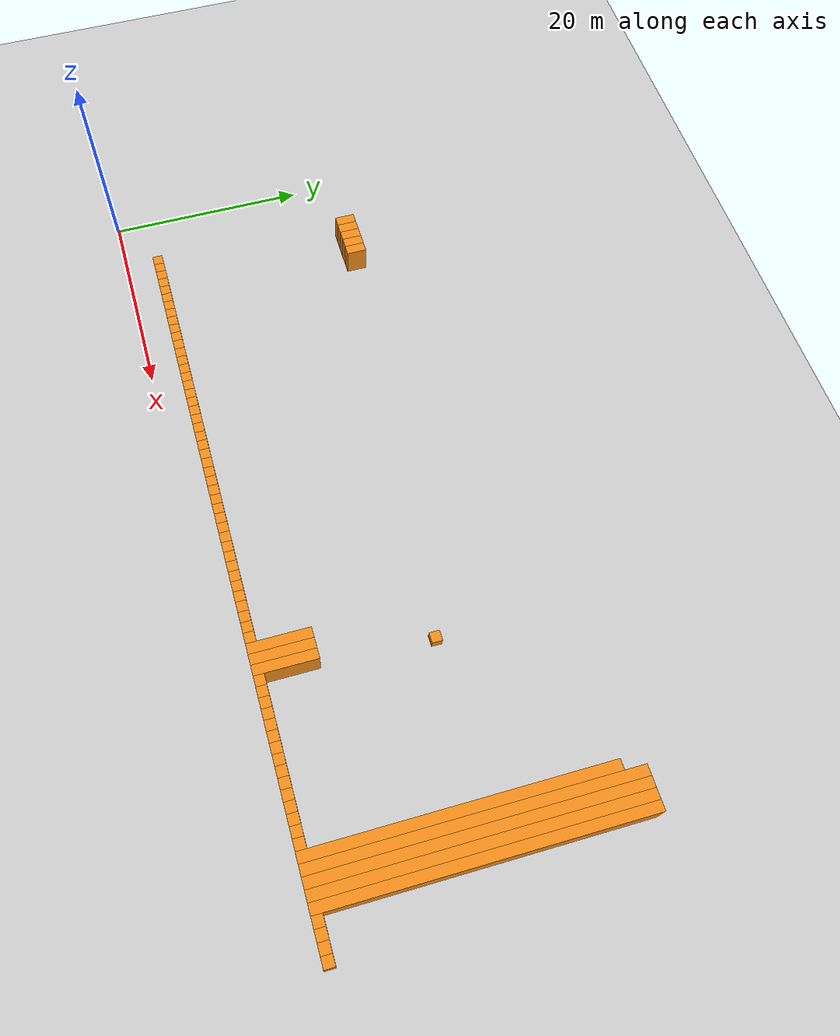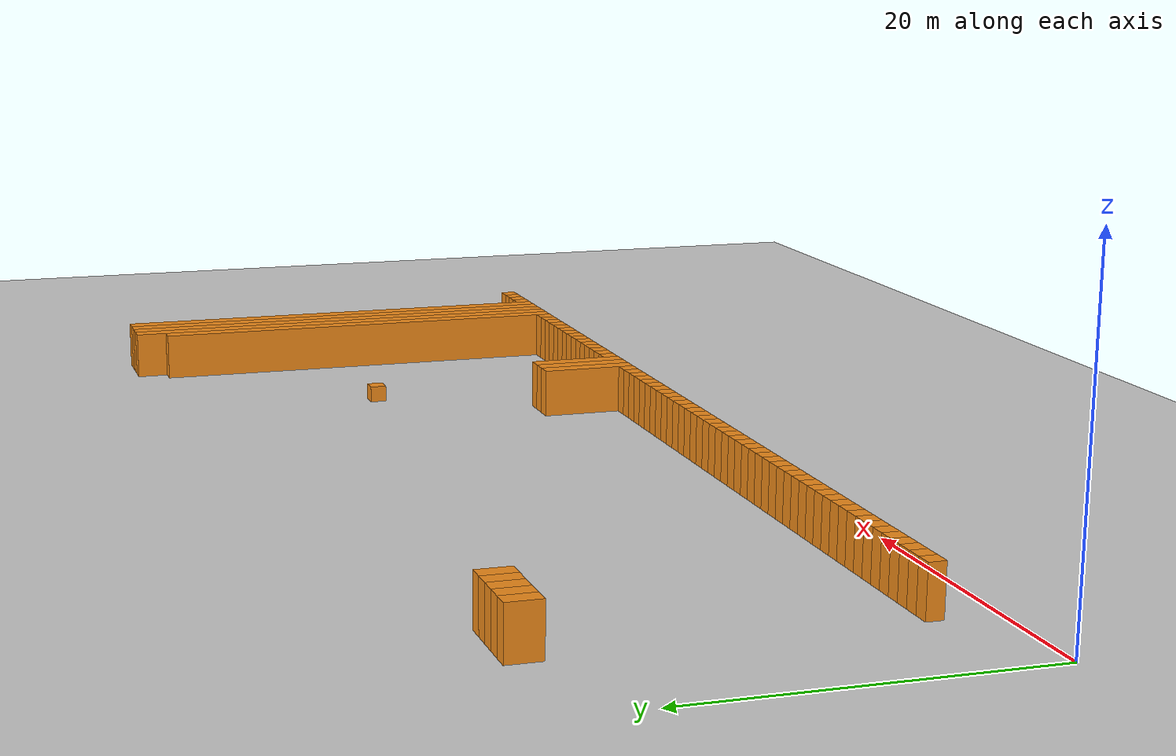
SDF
<sdf version="1.6">
 <world name="default">
  <include><uri>model://ground_plane</uri></include>
  <model name="unit_box_004">
   <pose>7.50     3.50     1.50 0 0 0</pose>
   <static>1</static>
   <link name="link">
    <inertial>
     <mass>5000</mass>
     <inertia><ixx>200</ixx><ixy>0</ixy><ixz>0</ixz><iyy>200</iyy><iyz>0</iyz><izz>200</izz></inertia>
    </inertial>
    <collision name="collision"><geometry><box><size>1 1 3</size></box></geometry></collision>
    <visual name="visual">
     <geometry><box><size>1 1 3</size></box></geometry>
     <material>
      <script><name>Gazebo/Orange</name><uri>file://media/materials/scripts/gazebo.material</uri></script>
     </material>
    </visual>
   </link>
  </model>
  <model name="unit_box_005">
   <pose>7.50    24.00     1.50 0 0 0</pose>
   <static>1</static>
   <link name="link">
    <inertial>
     <mass>5000</mass>
     <inertia><ixx>200</ixx><ixy>0</ixy><ixz>0</ixz><iyy>200</iyy><iyz>0</iyz><izz>200</izz></inertia>
    </inertial>
    <collision name="collision"><geometry><box><size>1 2 3</size></box></geometry></collision>
    <visual name="visual">
     <geometry><box><size>1 2 3</size></box></geometry>
     <material>
      <script><name>Gazebo/Orange</name><uri>file://media/materials/scripts/gazebo.material</uri></script>
     </material>
    </visual>
   </link>
  </model>
  <model name="unit_box_017">
   <pose>8.50     3.50     1.50 0 0 0</pose>
   <static>1</static>
   <link name="link">
    <inertial>
     <mass>5000</mass>
     <inertia><ixx>200</ixx><ixy>0</ixy><ixz>0</ixz><iyy>200</iyy><iyz>0</iyz><izz>200</izz></inertia>
    </inertial>
    <collision name="collision"><geometry><box><size>1 1 3</size></box></geometry></collision>
    <visual name="visual">
     <geometry><box><size>1 1 3</size></box></geometry>
     <material>
      <script><name>Gazebo/Orange</name><uri>file://media/materials/scripts/gazebo.material</uri></script>
     </material>
    </visual>
   </link>
  </model>
  <model name="unit_box_018">
   <pose>8.50    24.00     1.50 0 0 0</pose>
   <static>1</static>
   <link name="link">
    <inertial>
     <mass>5000</mass>
     <inertia><ixx>200</ixx><ixy>0</ixy><ixz>0</ixz><iyy>200</iyy><iyz>0</iyz><izz>200</izz></inertia>
    </inertial>
    <collision name="collision"><geometry><box><size>1 2 3</size></box></geometry></collision>
    <visual name="visual">
     <geometry><box><size>1 2 3</size></box></geometry>
     <material>
      <script><name>Gazebo/Orange</name><uri>file://media/materials/scripts/gazebo.material</uri></script>
     </material>
    </visual>
   </link>
  </model>
  <model name="unit_box_030">
   <pose>9.50     3.50     1.50 0 0 0</pose>
   <static>1</static>
   <link name="link">
    <inertial>
     <mass>5000</mass>
     <inertia><ixx>200</ixx><ixy>0</ixy><ixz>0</ixz><iyy>200</iyy><iyz>0</iyz><izz>200</izz></inertia>
    </inertial>
    <collision name="collision"><geometry><box><size>1 1 3</size></box></geometry></collision>
    <visual name="visual">
     <geometry><box><size>1 1 3</size></box></geometry>
     <material>
      <script><name>Gazebo/Orange</name><uri>file://media/materials/scripts/gazebo.material</uri></script>
     </material>
    </visual>
   </link>
  </model>
  <model name="unit_box_031">
   <pose>9.50    24.00     1.50 0 0 0</pose>
   <static>1</static>
   <link name="link">
    <inertial>
     <mass>5000</mass>
     <inertia><ixx>200</ixx><ixy>0</ixy><ixz>0</ixz><iyy>200</iyy><iyz>0</iyz><izz>200</izz></inertia>
    </inertial>
    <collision name="collision"><geometry><box><size>1 2 3</size></box></geometry></collision>
    <visual name="visual">
     <geometry><box><size>1 2 3</size></box></geometry>
     <material>
      <script><name>Gazebo/Orange</name><uri>file://media/materials/scripts/gazebo.material</uri></script>
     </material>
    </visual>
   </link>
  </model>
  <model name="unit_box_043">
   <pose>10.50     3.50     1.50 0 0 0</pose>
   <static>1</static>
   <link name="link">
    <inertial>
     <mass>5000</mass>
     <inertia><ixx>200</ixx><ixy>0</ixy><ixz>0</ixz><iyy>200</iyy><iyz>0</iyz><izz>200</izz></inertia>
    </inertial>
    <collision name="collision"><geometry><box><size>1 1 3</size></box></geometry></collision>
    <visual name="visual">
     <geometry><box><size>1 1 3</size></box></geometry>
     <material>
      <script><name>Gazebo/Orange</name><uri>file://media/materials/scripts/gazebo.material</uri></script>
     </material>
    </visual>
   </link>
  </model>
  <model name="unit_box_044">
   <pose>10.50    24.00     1.50 0 0 0</pose>
   <static>1</static>
   <link name="link">
    <inertial>
     <mass>5000</mass>
     <inertia><ixx>200</ixx><ixy>0</ixy><ixz>0</ixz><iyy>200</iyy><iyz>0</iyz><izz>200</izz></inertia>
    </inertial>
    <collision name="collision"><geometry><box><size>1 2 3</size></box></geometry></collision>
    <visual name="visual">
     <geometry><box><size>1 2 3</size></box></geometry>
     <material>
      <script><name>Gazebo/Orange</name><uri>file://media/materials/scripts/gazebo.material</uri></script>
     </material>
    </visual>
   </link>
  </model>
  <model name="unit_box_056">
   <pose>11.50     3.50     1.50 0 0 0</pose>
   <static>1</static>
   <link name="link">
    <inertial>
     <mass>5000</mass>
     <inertia><ixx>200</ixx><ixy>0</ixy><ixz>0</ixz><iyy>200</iyy><iyz>0</iyz><izz>200</izz></inertia>
    </inertial>
    <collision name="collision"><geometry><box><size>1 1 3</size></box></geometry></collision>
    <visual name="visual">
     <geometry><box><size>1 1 3</size></box></geometry>
     <material>
      <script><name>Gazebo/Orange</name><uri>file://media/materials/scripts/gazebo.material</uri></script>
     </material>
    </visual>
   </link>
  </model>
  <model name="unit_box_057">
   <pose>11.50    24.00     1.50 0 0 0</pose>
   <static>1</static>
   <link name="link">
    <inertial>
     <mass>5000</mass>
     <inertia><ixx>200</ixx><ixy>0</ixy><ixz>0</ixz><iyy>200</iyy><iyz>0</iyz><izz>200</izz></inertia>
    </inertial>
    <collision name="collision"><geometry><box><size>1 2 3</size></box></geometry></collision>
    <visual name="visual">
     <geometry><box><size>1 2 3</size></box></geometry>
     <material>
      <script><name>Gazebo/Orange</name><uri>file://media/materials/scripts/gazebo.material</uri></script>
     </material>
    </visual>
   </link>
  </model>
  <model name="unit_box_069">
   <pose>12.50     3.50     1.50 0 0 0</pose>
   <static>1</static>
   <link name="link">
    <inertial>
     <mass>5000</mass>
     <inertia><ixx>200</ixx><ixy>0</ixy><ixz>0</ixz><iyy>200</iyy><iyz>0</iyz><izz>200</izz></inertia>
    </inertial>
    <collision name="collision"><geometry><box><size>1 1 3</size></box></geometry></collision>
    <visual name="visual">
     <geometry><box><size>1 1 3</size></box></geometry>
     <material>
      <script><name>Gazebo/Orange</name><uri>file://media/materials/scripts/gazebo.material</uri></script>
     </material>
    </visual>
   </link>
  </model>
  <model name="unit_box_082">
   <pose>13.50     3.50     1.50 0 0 0</pose>
   <static>1</static>
   <link name="link">
    <inertial>
     <mass>5000</mass>
     <inertia><ixx>200</ixx><ixy>0</ixy><ixz>0</ixz><iyy>200</iyy><iyz>0</iyz><izz>200</izz></inertia>
    </inertial>
    <collision name="collision"><geometry><box><size>1 1 3</size></box></geometry></collision>
    <visual name="visual">
     <geometry><box><size>1 1 3</size></box></geometry>
     <material>
      <script><name>Gazebo/Orange</name><uri>file://media/materials/scripts/gazebo.material</uri></script>
     </material>
    </visual>
   </link>
  </model>
  <model name="unit_box_095">
   <pose>14.50     3.50     1.50 0 0 0</pose>
   <static>1</static>
   <link name="link">
    <inertial>
     <mass>5000</mass>
     <inertia><ixx>200</ixx><ixy>0</ixy><ixz>0</ixz><iyy>200</iyy><iyz>0</iyz><izz>200</izz></inertia>
    </inertial>
    <collision name="collision"><geometry><box><size>1 1 3</size></box></geometry></collision>
    <visual name="visual">
     <geometry><box><size>1 1 3</size></box></geometry>
     <material>
      <script><name>Gazebo/Orange</name><uri>file://media/materials/scripts/gazebo.material</uri></script>
     </material>
    </visual>
   </link>
  </model>
  <model name="unit_box_108">
   <pose>15.50     3.50     1.50 0 0 0</pose>
   <static>1</static>
   <link name="link">
    <inertial>
     <mass>5000</mass>
     <inertia><ixx>200</ixx><ixy>0</ixy><ixz>0</ixz><iyy>200</iyy><iyz>0</iyz><izz>200</izz></inertia>
    </inertial>
    <collision name="collision"><geometry><box><size>1 1 3</size></box></geometry></collision>
    <visual name="visual">
     <geometry><box><size>1 1 3</size></box></geometry>
     <material>
      <script><name>Gazebo/Orange</name><uri>file://media/materials/scripts/gazebo.material</uri></script>
     </material>
    </visual>
   </link>
  </model>
  <model name="unit_box_121">
   <pose>16.50     3.50     1.50 0 0 0</pose>
   <static>1</static>
   <link name="link">
    <inertial>
     <mass>5000</mass>
     <inertia><ixx>200</ixx><ixy>0</ixy><ixz>0</ixz><iyy>200</iyy><iyz>0</iyz><izz>200</izz></inertia>
    </inertial>
    <collision name="collision"><geometry><box><size>1 1 3</size></box></geometry></collision>
    <visual name="visual">
     <geometry><box><size>1 1 3</size></box></geometry>
     <material>
      <script><name>Gazebo/Orange</name><uri>file://media/materials/scripts/gazebo.material</uri></script>
     </material>
    </visual>
   </link>
  </model>
  <model name="unit_box_134">
   <pose>17.50     3.50     1.50 0 0 0</pose>
   <static>1</static>
   <link name="link">
    <inertial>
     <mass>5000</mass>
     <inertia><ixx>200</ixx><ixy>0</ixy><ixz>0</ixz><iyy>200</iyy><iyz>0</iyz><izz>200</izz></inertia>
    </inertial>
    <collision name="collision"><geometry><box><size>1 1 3</size></box></geometry></collision>
    <visual name="visual">
     <geometry><box><size>1 1 3</size></box></geometry>
     <material>
      <script><name>Gazebo/Orange</name><uri>file://media/materials/scripts/gazebo.material</uri></script>
     </material>
    </visual>
   </link>
  </model>
  <model name="unit_box_147">
   <pose>18.50     3.50     1.50 0 0 0</pose>
   <static>1</static>
   <link name="link">
    <inertial>
     <mass>5000</mass>
     <inertia><ixx>200</ixx><ixy>0</ixy><ixz>0</ixz><iyy>200</iyy><iyz>0</iyz><izz>200</izz></inertia>
    </inertial>
    <collision name="collision"><geometry><box><size>1 1 3</size></box></geometry></collision>
    <visual name="visual">
     <geometry><box><size>1 1 3</size></box></geometry>
     <material>
      <script><name>Gazebo/Orange</name><uri>file://media/materials/scripts/gazebo.material</uri></script>
     </material>
    </visual>
   </link>
  </model>
  <model name="unit_box_160">
   <pose>19.50     3.50     1.50 0 0 0</pose>
   <static>1</static>
   <link name="link">
    <inertial>
     <mass>5000</mass>
     <inertia><ixx>200</ixx><ixy>0</ixy><ixz>0</ixz><iyy>200</iyy><iyz>0</iyz><izz>200</izz></inertia>
    </inertial>
    <collision name="collision"><geometry><box><size>1 1 3</size></box></geometry></collision>
    <visual name="visual">
     <geometry><box><size>1 1 3</size></box></geometry>
     <material>
      <script><name>Gazebo/Orange</name><uri>file://media/materials/scripts/gazebo.material</uri></script>
     </material>
    </visual>
   </link>
  </model>
  <model name="unit_box_173">
   <pose>20.50     3.50     1.50 0 0 0</pose>
   <static>1</static>
   <link name="link">
    <inertial>
     <mass>5000</mass>
     <inertia><ixx>200</ixx><ixy>0</ixy><ixz>0</ixz><iyy>200</iyy><iyz>0</iyz><izz>200</izz></inertia>
    </inertial>
    <collision name="collision"><geometry><box><size>1 1 3</size></box></geometry></collision>
    <visual name="visual">
     <geometry><box><size>1 1 3</size></box></geometry>
     <material>
      <script><name>Gazebo/Orange</name><uri>file://media/materials/scripts/gazebo.material</uri></script>
     </material>
    </visual>
   </link>
  </model>
  <model name="unit_box_186">
   <pose>21.50     3.50     1.50 0 0 0</pose>
   <static>1</static>
   <link name="link">
    <inertial>
     <mass>5000</mass>
     <inertia><ixx>200</ixx><ixy>0</ixy><ixz>0</ixz><iyy>200</iyy><iyz>0</iyz><izz>200</izz></inertia>
    </inertial>
    <collision name="collision"><geometry><box><size>1 1 3</size></box></geometry></collision>
    <visual name="visual">
     <geometry><box><size>1 1 3</size></box></geometry>
     <material>
      <script><name>Gazebo/Orange</name><uri>file://media/materials/scripts/gazebo.material</uri></script>
     </material>
    </visual>
   </link>
  </model>
  <model name="unit_box_199">
   <pose>22.50     3.50     1.50 0 0 0</pose>
   <static>1</static>
   <link name="link">
    <inertial>
     <mass>5000</mass>
     <inertia><ixx>200</ixx><ixy>0</ixy><ixz>0</ixz><iyy>200</iyy><iyz>0</iyz><izz>200</izz></inertia>
    </inertial>
    <collision name="collision"><geometry><box><size>1 1 3</size></box></geometry></collision>
    <visual name="visual">
     <geometry><box><size>1 1 3</size></box></geometry>
     <material>
      <script><name>Gazebo/Orange</name><uri>file://media/materials/scripts/gazebo.material</uri></script>
     </material>
    </visual>
   </link>
  </model>
  <model name="unit_box_212">
   <pose>23.50     3.50     1.50 0 0 0</pose>
   <static>1</static>
   <link name="link">
    <inertial>
     <mass>5000</mass>
     <inertia><ixx>200</ixx><ixy>0</ixy><ixz>0</ixz><iyy>200</iyy><iyz>0</iyz><izz>200</izz></inertia>
    </inertial>
    <collision name="collision"><geometry><box><size>1 1 3</size></box></geometry></collision>
    <visual name="visual">
     <geometry><box><size>1 1 3</size></box></geometry>
     <material>
      <script><name>Gazebo/Orange</name><uri>file://media/materials/scripts/gazebo.material</uri></script>
     </material>
    </visual>
   </link>
  </model>
  <model name="unit_box_225">
   <pose>24.50     3.50     1.50 0 0 0</pose>
   <static>1</static>
   <link name="link">
    <inertial>
     <mass>5000</mass>
     <inertia><ixx>200</ixx><ixy>0</ixy><ixz>0</ixz><iyy>200</iyy><iyz>0</iyz><izz>200</izz></inertia>
    </inertial>
    <collision name="collision"><geometry><box><size>1 1 3</size></box></geometry></collision>
    <visual name="visual">
     <geometry><box><size>1 1 3</size></box></geometry>
     <material>
      <script><name>Gazebo/Orange</name><uri>file://media/materials/scripts/gazebo.material</uri></script>
     </material>
    </visual>
   </link>
  </model>
  <model name="unit_box_238">
   <pose>25.50     3.50     1.50 0 0 0</pose>
   <static>1</static>
   <link name="link">
    <inertial>
     <mass>5000</mass>
     <inertia><ixx>200</ixx><ixy>0</ixy><ixz>0</ixz><iyy>200</iyy><iyz>0</iyz><izz>200</izz></inertia>
    </inertial>
    <collision name="collision"><geometry><box><size>1 1 3</size></box></geometry></collision>
    <visual name="visual">
     <geometry><box><size>1 1 3</size></box></geometry>
     <material>
      <script><name>Gazebo/Orange</name><uri>file://media/materials/scripts/gazebo.material</uri></script>
     </material>
    </visual>
   </link>
  </model>
  <model name="unit_box_251">
   <pose>26.50     3.50     1.50 0 0 0</pose>
   <static>1</static>
   <link name="link">
    <inertial>
     <mass>5000</mass>
     <inertia><ixx>200</ixx><ixy>0</ixy><ixz>0</ixz><iyy>200</iyy><iyz>0</iyz><izz>200</izz></inertia>
    </inertial>
    <collision name="collision"><geometry><box><size>1 1 3</size></box></geometry></collision>
    <visual name="visual">
     <geometry><box><size>1 1 3</size></box></geometry>
     <material>
      <script><name>Gazebo/Orange</name><uri>file://media/materials/scripts/gazebo.material</uri></script>
     </material>
    </visual>
   </link>
  </model>
  <model name="unit_box_264">
   <pose>27.50     3.50     1.50 0 0 0</pose>
   <static>1</static>
   <link name="link">
    <inertial>
     <mass>5000</mass>
     <inertia><ixx>200</ixx><ixy>0</ixy><ixz>0</ixz><iyy>200</iyy><iyz>0</iyz><izz>200</izz></inertia>
    </inertial>
    <collision name="collision"><geometry><box><size>1 1 3</size></box></geometry></collision>
    <visual name="visual">
     <geometry><box><size>1 1 3</size></box></geometry>
     <material>
      <script><name>Gazebo/Orange</name><uri>file://media/materials/scripts/gazebo.material</uri></script>
     </material>
    </visual>
   </link>
  </model>
  <model name="unit_box_277">
   <pose>28.50     3.50     1.50 0 0 0</pose>
   <static>1</static>
   <link name="link">
    <inertial>
     <mass>5000</mass>
     <inertia><ixx>200</ixx><ixy>0</ixy><ixz>0</ixz><iyy>200</iyy><iyz>0</iyz><izz>200</izz></inertia>
    </inertial>
    <collision name="collision"><geometry><box><size>1 1 3</size></box></geometry></collision>
    <visual name="visual">
     <geometry><box><size>1 1 3</size></box></geometry>
     <material>
      <script><name>Gazebo/Orange</name><uri>file://media/materials/scripts/gazebo.material</uri></script>
     </material>
    </visual>
   </link>
  </model>
  <model name="unit_box_290">
   <pose>29.50     3.50     1.50 0 0 0</pose>
   <static>1</static>
   <link name="link">
    <inertial>
     <mass>5000</mass>
     <inertia><ixx>200</ixx><ixy>0</ixy><ixz>0</ixz><iyy>200</iyy><iyz>0</iyz><izz>200</izz></inertia>
    </inertial>
    <collision name="collision"><geometry><box><size>1 1 3</size></box></geometry></collision>
    <visual name="visual">
     <geometry><box><size>1 1 3</size></box></geometry>
     <material>
      <script><name>Gazebo/Orange</name><uri>file://media/materials/scripts/gazebo.material</uri></script>
     </material>
    </visual>
   </link>
  </model>
  <model name="unit_box_303">
   <pose>30.50     3.50     1.50 0 0 0</pose>
   <static>1</static>
   <link name="link">
    <inertial>
     <mass>5000</mass>
     <inertia><ixx>200</ixx><ixy>0</ixy><ixz>0</ixz><iyy>200</iyy><iyz>0</iyz><izz>200</izz></inertia>
    </inertial>
    <collision name="collision"><geometry><box><size>1 1 3</size></box></geometry></collision>
    <visual name="visual">
     <geometry><box><size>1 1 3</size></box></geometry>
     <material>
      <script><name>Gazebo/Orange</name><uri>file://media/materials/scripts/gazebo.material</uri></script>
     </material>
    </visual>
   </link>
  </model>
  <model name="unit_box_316">
   <pose>31.50     3.50     1.50 0 0 0</pose>
   <static>1</static>
   <link name="link">
    <inertial>
     <mass>5000</mass>
     <inertia><ixx>200</ixx><ixy>0</ixy><ixz>0</ixz><iyy>200</iyy><iyz>0</iyz><izz>200</izz></inertia>
    </inertial>
    <collision name="collision"><geometry><box><size>1 1 3</size></box></geometry></collision>
    <visual name="visual">
     <geometry><box><size>1 1 3</size></box></geometry>
     <material>
      <script><name>Gazebo/Orange</name><uri>file://media/materials/scripts/gazebo.material</uri></script>
     </material>
    </visual>
   </link>
  </model>
  <model name="unit_box_329">
   <pose>32.50     3.50     1.50 0 0 0</pose>
   <static>1</static>
   <link name="link">
    <inertial>
     <mass>5000</mass>
     <inertia><ixx>200</ixx><ixy>0</ixy><ixz>0</ixz><iyy>200</iyy><iyz>0</iyz><izz>200</izz></inertia>
    </inertial>
    <collision name="collision"><geometry><box><size>1 1 3</size></box></geometry></collision>
    <visual name="visual">
     <geometry><box><size>1 1 3</size></box></geometry>
     <material>
      <script><name>Gazebo/Orange</name><uri>file://media/materials/scripts/gazebo.material</uri></script>
     </material>
    </visual>
   </link>
  </model>
  <model name="unit_box_342">
   <pose>33.50     3.50     1.50 0 0 0</pose>
   <static>1</static>
   <link name="link">
    <inertial>
     <mass>5000</mass>
     <inertia><ixx>200</ixx><ixy>0</ixy><ixz>0</ixz><iyy>200</iyy><iyz>0</iyz><izz>200</izz></inertia>
    </inertial>
    <collision name="collision"><geometry><box><size>1 1 3</size></box></geometry></collision>
    <visual name="visual">
     <geometry><box><size>1 1 3</size></box></geometry>
     <material>
      <script><name>Gazebo/Orange</name><uri>file://media/materials/scripts/gazebo.material</uri></script>
     </material>
    </visual>
   </link>
  </model>
  <model name="unit_box_355">
   <pose>34.50     3.50     1.50 0 0 0</pose>
   <static>1</static>
   <link name="link">
    <inertial>
     <mass>5000</mass>
     <inertia><ixx>200</ixx><ixy>0</ixy><ixz>0</ixz><iyy>200</iyy><iyz>0</iyz><izz>200</izz></inertia>
    </inertial>
    <collision name="collision"><geometry><box><size>1 1 3</size></box></geometry></collision>
    <visual name="visual">
     <geometry><box><size>1 1 3</size></box></geometry>
     <material>
      <script><name>Gazebo/Orange</name><uri>file://media/materials/scripts/gazebo.material</uri></script>
     </material>
    </visual>
   </link>
  </model>
  <model name="unit_box_368">
   <pose>35.50     3.50     1.50 0 0 0</pose>
   <static>1</static>
   <link name="link">
    <inertial>
     <mass>5000</mass>
     <inertia><ixx>200</ixx><ixy>0</ixy><ixz>0</ixz><iyy>200</iyy><iyz>0</iyz><izz>200</izz></inertia>
    </inertial>
    <collision name="collision"><geometry><box><size>1 1 3</size></box></geometry></collision>
    <visual name="visual">
     <geometry><box><size>1 1 3</size></box></geometry>
     <material>
      <script><name>Gazebo/Orange</name><uri>file://media/materials/scripts/gazebo.material</uri></script>
     </material>
    </visual>
   </link>
  </model>
  <model name="unit_box_381">
   <pose>36.50     3.50     1.50 0 0 0</pose>
   <static>1</static>
   <link name="link">
    <inertial>
     <mass>5000</mass>
     <inertia><ixx>200</ixx><ixy>0</ixy><ixz>0</ixz><iyy>200</iyy><iyz>0</iyz><izz>200</izz></inertia>
    </inertial>
    <collision name="collision"><geometry><box><size>1 1 3</size></box></geometry></collision>
    <visual name="visual">
     <geometry><box><size>1 1 3</size></box></geometry>
     <material>
      <script><name>Gazebo/Orange</name><uri>file://media/materials/scripts/gazebo.material</uri></script>
     </material>
    </visual>
   </link>
  </model>
  <model name="unit_box_394">
   <pose>37.50     3.50     1.50 0 0 0</pose>
   <static>1</static>
   <link name="link">
    <inertial>
     <mass>5000</mass>
     <inertia><ixx>200</ixx><ixy>0</ixy><ixz>0</ixz><iyy>200</iyy><iyz>0</iyz><izz>200</izz></inertia>
    </inertial>
    <collision name="collision"><geometry><box><size>1 1 3</size></box></geometry></collision>
    <visual name="visual">
     <geometry><box><size>1 1 3</size></box></geometry>
     <material>
      <script><name>Gazebo/Orange</name><uri>file://media/materials/scripts/gazebo.material</uri></script>
     </material>
    </visual>
   </link>
  </model>
  <model name="unit_box_407">
   <pose>38.50     3.50     1.50 0 0 0</pose>
   <static>1</static>
   <link name="link">
    <inertial>
     <mass>5000</mass>
     <inertia><ixx>200</ixx><ixy>0</ixy><ixz>0</ixz><iyy>200</iyy><iyz>0</iyz><izz>200</izz></inertia>
    </inertial>
    <collision name="collision"><geometry><box><size>1 1 3</size></box></geometry></collision>
    <visual name="visual">
     <geometry><box><size>1 1 3</size></box></geometry>
     <material>
      <script><name>Gazebo/Orange</name><uri>file://media/materials/scripts/gazebo.material</uri></script>
     </material>
    </visual>
   </link>
  </model>
  <model name="unit_box_420">
   <pose>39.50     3.50     1.50 0 0 0</pose>
   <static>1</static>
   <link name="link">
    <inertial>
     <mass>5000</mass>
     <inertia><ixx>200</ixx><ixy>0</ixy><ixz>0</ixz><iyy>200</iyy><iyz>0</iyz><izz>200</izz></inertia>
    </inertial>
    <collision name="collision"><geometry><box><size>1 1 3</size></box></geometry></collision>
    <visual name="visual">
     <geometry><box><size>1 1 3</size></box></geometry>
     <material>
      <script><name>Gazebo/Orange</name><uri>file://media/materials/scripts/gazebo.material</uri></script>
     </material>
    </visual>
   </link>
  </model>
  <model name="unit_box_433">
   <pose>40.50     3.50     1.50 0 0 0</pose>
   <static>1</static>
   <link name="link">
    <inertial>
     <mass>5000</mass>
     <inertia><ixx>200</ixx><ixy>0</ixy><ixz>0</ixz><iyy>200</iyy><iyz>0</iyz><izz>200</izz></inertia>
    </inertial>
    <collision name="collision"><geometry><box><size>1 1 3</size></box></geometry></collision>
    <visual name="visual">
     <geometry><box><size>1 1 3</size></box></geometry>
     <material>
      <script><name>Gazebo/Orange</name><uri>file://media/materials/scripts/gazebo.material</uri></script>
     </material>
    </visual>
   </link>
  </model>
  <model name="unit_box_446">
   <pose>41.50     3.50     1.50 0 0 0</pose>
   <static>1</static>
   <link name="link">
    <inertial>
     <mass>5000</mass>
     <inertia><ixx>200</ixx><ixy>0</ixy><ixz>0</ixz><iyy>200</iyy><iyz>0</iyz><izz>200</izz></inertia>
    </inertial>
    <collision name="collision"><geometry><box><size>1 1 3</size></box></geometry></collision>
    <visual name="visual">
     <geometry><box><size>1 1 3</size></box></geometry>
     <material>
      <script><name>Gazebo/Orange</name><uri>file://media/materials/scripts/gazebo.material</uri></script>
     </material>
    </visual>
   </link>
  </model>
  <model name="unit_box_459">
   <pose>42.50     3.50     1.50 0 0 0</pose>
   <static>1</static>
   <link name="link">
    <inertial>
     <mass>5000</mass>
     <inertia><ixx>200</ixx><ixy>0</ixy><ixz>0</ixz><iyy>200</iyy><iyz>0</iyz><izz>200</izz></inertia>
    </inertial>
    <collision name="collision"><geometry><box><size>1 1 3</size></box></geometry></collision>
    <visual name="visual">
     <geometry><box><size>1 1 3</size></box></geometry>
     <material>
      <script><name>Gazebo/Orange</name><uri>file://media/materials/scripts/gazebo.material</uri></script>
     </material>
    </visual>
   </link>
  </model>
  <model name="unit_box_472">
   <pose>43.50     3.50     1.50 0 0 0</pose>
   <static>1</static>
   <link name="link">
    <inertial>
     <mass>5000</mass>
     <inertia><ixx>200</ixx><ixy>0</ixy><ixz>0</ixz><iyy>200</iyy><iyz>0</iyz><izz>200</izz></inertia>
    </inertial>
    <collision name="collision"><geometry><box><size>1 1 3</size></box></geometry></collision>
    <visual name="visual">
     <geometry><box><size>1 1 3</size></box></geometry>
     <material>
      <script><name>Gazebo/Orange</name><uri>file://media/materials/scripts/gazebo.material</uri></script>
     </material>
    </visual>
   </link>
  </model>
  <model name="unit_box_485">
   <pose>44.50     3.50     1.50 0 0 0</pose>
   <static>1</static>
   <link name="link">
    <inertial>
     <mass>5000</mass>
     <inertia><ixx>200</ixx><ixy>0</ixy><ixz>0</ixz><iyy>200</iyy><iyz>0</iyz><izz>200</izz></inertia>
    </inertial>
    <collision name="collision"><geometry><box><size>1 1 3</size></box></geometry></collision>
    <visual name="visual">
     <geometry><box><size>1 1 3</size></box></geometry>
     <material>
      <script><name>Gazebo/Orange</name><uri>file://media/materials/scripts/gazebo.material</uri></script>
     </material>
    </visual>
   </link>
  </model>
  <model name="unit_box_498">
   <pose>45.50     3.50     1.50 0 0 0</pose>
   <static>1</static>
   <link name="link">
    <inertial>
     <mass>5000</mass>
     <inertia><ixx>200</ixx><ixy>0</ixy><ixz>0</ixz><iyy>200</iyy><iyz>0</iyz><izz>200</izz></inertia>
    </inertial>
    <collision name="collision"><geometry><box><size>1 1 3</size></box></geometry></collision>
    <visual name="visual">
     <geometry><box><size>1 1 3</size></box></geometry>
     <material>
      <script><name>Gazebo/Orange</name><uri>file://media/materials/scripts/gazebo.material</uri></script>
     </material>
    </visual>
   </link>
  </model>
  <model name="unit_box_511">
   <pose>46.50     3.50     1.50 0 0 0</pose>
   <static>1</static>
   <link name="link">
    <inertial>
     <mass>5000</mass>
     <inertia><ixx>200</ixx><ixy>0</ixy><ixz>0</ixz><iyy>200</iyy><iyz>0</iyz><izz>200</izz></inertia>
    </inertial>
    <collision name="collision"><geometry><box><size>1 1 3</size></box></geometry></collision>
    <visual name="visual">
     <geometry><box><size>1 1 3</size></box></geometry>
     <material>
      <script><name>Gazebo/Orange</name><uri>file://media/materials/scripts/gazebo.material</uri></script>
     </material>
    </visual>
   </link>
  </model>
  <model name="unit_box_524">
   <pose>47.50     3.50     1.50 0 0 0</pose>
   <static>1</static>
   <link name="link">
    <inertial>
     <mass>5000</mass>
     <inertia><ixx>200</ixx><ixy>0</ixy><ixz>0</ixz><iyy>200</iyy><iyz>0</iyz><izz>200</izz></inertia>
    </inertial>
    <collision name="collision"><geometry><box><size>1 1 3</size></box></geometry></collision>
    <visual name="visual">
     <geometry><box><size>1 1 3</size></box></geometry>
     <material>
      <script><name>Gazebo/Orange</name><uri>file://media/materials/scripts/gazebo.material</uri></script>
     </material>
    </visual>
   </link>
  </model>
  <model name="unit_box_537">
   <pose>48.50     3.50     1.50 0 0 0</pose>
   <static>1</static>
   <link name="link">
    <inertial>
     <mass>5000</mass>
     <inertia><ixx>200</ixx><ixy>0</ixy><ixz>0</ixz><iyy>200</iyy><iyz>0</iyz><izz>200</izz></inertia>
    </inertial>
    <collision name="collision"><geometry><box><size>1 1 3</size></box></geometry></collision>
    <visual name="visual">
     <geometry><box><size>1 1 3</size></box></geometry>
     <material>
      <script><name>Gazebo/Orange</name><uri>file://media/materials/scripts/gazebo.material</uri></script>
     </material>
    </visual>
   </link>
  </model>
  <model name="unit_box_550">
   <pose>49.50     3.50     1.50 0 0 0</pose>
   <static>1</static>
   <link name="link">
    <inertial>
     <mass>5000</mass>
     <inertia><ixx>200</ixx><ixy>0</ixy><ixz>0</ixz><iyy>200</iyy><iyz>0</iyz><izz>200</izz></inertia>
    </inertial>
    <collision name="collision"><geometry><box><size>1 1 3</size></box></geometry></collision>
    <visual name="visual">
     <geometry><box><size>1 1 3</size></box></geometry>
     <material>
      <script><name>Gazebo/Orange</name><uri>file://media/materials/scripts/gazebo.material</uri></script>
     </material>
    </visual>
   </link>
  </model>
  <model name="unit_box_563">
   <pose>50.50     3.50     1.50 0 0 0</pose>
   <static>1</static>
   <link name="link">
    <inertial>
     <mass>5000</mass>
     <inertia><ixx>200</ixx><ixy>0</ixy><ixz>0</ixz><iyy>200</iyy><iyz>0</iyz><izz>200</izz></inertia>
    </inertial>
    <collision name="collision"><geometry><box><size>1 1 3</size></box></geometry></collision>
    <visual name="visual">
     <geometry><box><size>1 1 3</size></box></geometry>
     <material>
      <script><name>Gazebo/Orange</name><uri>file://media/materials/scripts/gazebo.material</uri></script>
     </material>
    </visual>
   </link>
  </model>
  <model name="unit_box_579">
   <pose>51.50     6.00     1.50 0 0 0</pose>
   <static>1</static>
   <link name="link">
    <inertial>
     <mass>5000</mass>
     <inertia><ixx>200</ixx><ixy>0</ixy><ixz>0</ixz><iyy>200</iyy><iyz>0</iyz><izz>200</izz></inertia>
    </inertial>
    <collision name="collision"><geometry><box><size>1 6 3</size></box></geometry></collision>
    <visual name="visual">
     <geometry><box><size>1 6 3</size></box></geometry>
     <material>
      <script><name>Gazebo/Orange</name><uri>file://media/materials/scripts/gazebo.material</uri></script>
     </material>
    </visual>
   </link>
  </model>
  <model name="unit_box_593">
   <pose>52.50     6.00     1.50 0 0 0</pose>
   <static>1</static>
   <link name="link">
    <inertial>
     <mass>5000</mass>
     <inertia><ixx>200</ixx><ixy>0</ixy><ixz>0</ixz><iyy>200</iyy><iyz>0</iyz><izz>200</izz></inertia>
    </inertial>
    <collision name="collision"><geometry><box><size>1 6 3</size></box></geometry></collision>
    <visual name="visual">
     <geometry><box><size>1 6 3</size></box></geometry>
     <material>
      <script><name>Gazebo/Orange</name><uri>file://media/materials/scripts/gazebo.material</uri></script>
     </material>
    </visual>
   </link>
  </model>
  <model name="unit_box_607">
   <pose>53.50     6.00     1.50 0 0 0</pose>
   <static>1</static>
   <link name="link">
    <inertial>
     <mass>5000</mass>
     <inertia><ixx>200</ixx><ixy>0</ixy><ixz>0</ixz><iyy>200</iyy><iyz>0</iyz><izz>200</izz></inertia>
    </inertial>
    <collision name="collision"><geometry><box><size>1 6 3</size></box></geometry></collision>
    <visual name="visual">
     <geometry><box><size>1 6 3</size></box></geometry>
     <material>
      <script><name>Gazebo/Orange</name><uri>file://media/materials/scripts/gazebo.material</uri></script>
     </material>
    </visual>
   </link>
  </model>
  <model name="unit_box_621">
   <pose>54.50     3.50     1.50 0 0 0</pose>
   <static>1</static>
   <link name="link">
    <inertial>
     <mass>5000</mass>
     <inertia><ixx>200</ixx><ixy>0</ixy><ixz>0</ixz><iyy>200</iyy><iyz>0</iyz><izz>200</izz></inertia>
    </inertial>
    <collision name="collision"><geometry><box><size>1 1 3</size></box></geometry></collision>
    <visual name="visual">
     <geometry><box><size>1 1 3</size></box></geometry>
     <material>
      <script><name>Gazebo/Orange</name><uri>file://media/materials/scripts/gazebo.material</uri></script>
     </material>
    </visual>
   </link>
  </model>
  <model name="unit_box_622">
   <pose>54.50    19.50     1.50 0 0 0</pose>
   <static>1</static>
   <link name="link">
    <inertial>
     <mass>5000</mass>
     <inertia><ixx>200</ixx><ixy>0</ixy><ixz>0</ixz><iyy>200</iyy><iyz>0</iyz><izz>200</izz></inertia>
    </inertial>
    <collision name="collision"><geometry><box><size>1 1 1</size></box></geometry></collision>
    <visual name="visual">
     <geometry><box><size>1 1 1</size></box></geometry>
     <material>
      <script><name>Gazebo/Orange</name><uri>file://media/materials/scripts/gazebo.material</uri></script>
     </material>
    </visual>
   </link>
  </model>
  <model name="unit_box_655">
   <pose>55.50     3.50     1.50 0 0 0</pose>
   <static>1</static>
   <link name="link">
    <inertial>
     <mass>5000</mass>
     <inertia><ixx>200</ixx><ixy>0</ixy><ixz>0</ixz><iyy>200</iyy><iyz>0</iyz><izz>200</izz></inertia>
    </inertial>
    <collision name="collision"><geometry><box><size>1 1 3</size></box></geometry></collision>
    <visual name="visual">
     <geometry><box><size>1 1 3</size></box></geometry>
     <material>
      <script><name>Gazebo/Orange</name><uri>file://media/materials/scripts/gazebo.material</uri></script>
     </material>
    </visual>
   </link>
  </model>
  <model name="unit_box_663">
   <pose>56.50     3.50     1.50 0 0 0</pose>
   <static>1</static>
   <link name="link">
    <inertial>
     <mass>5000</mass>
     <inertia><ixx>200</ixx><ixy>0</ixy><ixz>0</ixz><iyy>200</iyy><iyz>0</iyz><izz>200</izz></inertia>
    </inertial>
    <collision name="collision"><geometry><box><size>1 1 3</size></box></geometry></collision>
    <visual name="visual">
     <geometry><box><size>1 1 3</size></box></geometry>
     <material>
      <script><name>Gazebo/Orange</name><uri>file://media/materials/scripts/gazebo.material</uri></script>
     </material>
    </visual>
   </link>
  </model>
  <model name="unit_box_670">
   <pose>57.50     3.50     1.50 0 0 0</pose>
   <static>1</static>
   <link name="link">
    <inertial>
     <mass>5000</mass>
     <inertia><ixx>200</ixx><ixy>0</ixy><ixz>0</ixz><iyy>200</iyy><iyz>0</iyz><izz>200</izz></inertia>
    </inertial>
    <collision name="collision"><geometry><box><size>1 1 3</size></box></geometry></collision>
    <visual name="visual">
     <geometry><box><size>1 1 3</size></box></geometry>
     <material>
      <script><name>Gazebo/Orange</name><uri>file://media/materials/scripts/gazebo.material</uri></script>
     </material>
    </visual>
   </link>
  </model>
  <model name="unit_box_678">
   <pose>58.50     3.50     1.50 0 0 0</pose>
   <static>1</static>
   <link name="link">
    <inertial>
     <mass>5000</mass>
     <inertia><ixx>200</ixx><ixy>0</ixy><ixz>0</ixz><iyy>200</iyy><iyz>0</iyz><izz>200</izz></inertia>
    </inertial>
    <collision name="collision"><geometry><box><size>1 1 3</size></box></geometry></collision>
    <visual name="visual">
     <geometry><box><size>1 1 3</size></box></geometry>
     <material>
      <script><name>Gazebo/Orange</name><uri>file://media/materials/scripts/gazebo.material</uri></script>
     </material>
    </visual>
   </link>
  </model>
  <model name="unit_box_686">
   <pose>59.50     3.50     1.50 0 0 0</pose>
   <static>1</static>
   <link name="link">
    <inertial>
     <mass>5000</mass>
     <inertia><ixx>200</ixx><ixy>0</ixy><ixz>0</ixz><iyy>200</iyy><iyz>0</iyz><izz>200</izz></inertia>
    </inertial>
    <collision name="collision"><geometry><box><size>1 1 3</size></box></geometry></collision>
    <visual name="visual">
     <geometry><box><size>1 1 3</size></box></geometry>
     <material>
      <script><name>Gazebo/Orange</name><uri>file://media/materials/scripts/gazebo.material</uri></script>
     </material>
    </visual>
   </link>
  </model>
  <model name="unit_box_691">
   <pose>60.50     3.50     1.50 0 0 0</pose>
   <static>1</static>
   <link name="link">
    <inertial>
     <mass>5000</mass>
     <inertia><ixx>200</ixx><ixy>0</ixy><ixz>0</ixz><iyy>200</iyy><iyz>0</iyz><izz>200</izz></inertia>
    </inertial>
    <collision name="collision"><geometry><box><size>1 1 3</size></box></geometry></collision>
    <visual name="visual">
     <geometry><box><size>1 1 3</size></box></geometry>
     <material>
      <script><name>Gazebo/Orange</name><uri>file://media/materials/scripts/gazebo.material</uri></script>
     </material>
    </visual>
   </link>
  </model>
  <model name="unit_box_696">
   <pose>61.50     3.50     1.50 0 0 0</pose>
   <static>1</static>
   <link name="link">
    <inertial>
     <mass>5000</mass>
     <inertia><ixx>200</ixx><ixy>0</ixy><ixz>0</ixz><iyy>200</iyy><iyz>0</iyz><izz>200</izz></inertia>
    </inertial>
    <collision name="collision"><geometry><box><size>1 1 3</size></box></geometry></collision>
    <visual name="visual">
     <geometry><box><size>1 1 3</size></box></geometry>
     <material>
      <script><name>Gazebo/Orange</name><uri>file://media/materials/scripts/gazebo.material</uri></script>
     </material>
    </visual>
   </link>
  </model>
  <model name="unit_box_701">
   <pose>62.50     3.50     1.50 0 0 0</pose>
   <static>1</static>
   <link name="link">
    <inertial>
     <mass>5000</mass>
     <inertia><ixx>200</ixx><ixy>0</ixy><ixz>0</ixz><iyy>200</iyy><iyz>0</iyz><izz>200</izz></inertia>
    </inertial>
    <collision name="collision"><geometry><box><size>1 1 3</size></box></geometry></collision>
    <visual name="visual">
     <geometry><box><size>1 1 3</size></box></geometry>
     <material>
      <script><name>Gazebo/Orange</name><uri>file://media/materials/scripts/gazebo.material</uri></script>
     </material>
    </visual>
   </link>
  </model>
  <model name="unit_box_706">
   <pose>63.50     3.50     1.50 0 0 0</pose>
   <static>1</static>
   <link name="link">
    <inertial>
     <mass>5000</mass>
     <inertia><ixx>200</ixx><ixy>0</ixy><ixz>0</ixz><iyy>200</iyy><iyz>0</iyz><izz>200</izz></inertia>
    </inertial>
    <collision name="collision"><geometry><box><size>1 1 3</size></box></geometry></collision>
    <visual name="visual">
     <geometry><box><size>1 1 3</size></box></geometry>
     <material>
      <script><name>Gazebo/Orange</name><uri>file://media/materials/scripts/gazebo.material</uri></script>
     </material>
    </visual>
   </link>
  </model>
  <model name="unit_box_711">
   <pose>64.50     3.50     1.50 0 0 0</pose>
   <static>1</static>
   <link name="link">
    <inertial>
     <mass>5000</mass>
     <inertia><ixx>200</ixx><ixy>0</ixy><ixz>0</ixz><iyy>200</iyy><iyz>0</iyz><izz>200</izz></inertia>
    </inertial>
    <collision name="collision"><geometry><box><size>1 1 3</size></box></geometry></collision>
    <visual name="visual">
     <geometry><box><size>1 1 3</size></box></geometry>
     <material>
      <script><name>Gazebo/Orange</name><uri>file://media/materials/scripts/gazebo.material</uri></script>
     </material>
    </visual>
   </link>
  </model>
  <model name="unit_box_716">
   <pose>65.50     3.50     1.50 0 0 0</pose>
   <static>1</static>
   <link name="link">
    <inertial>
     <mass>5000</mass>
     <inertia><ixx>200</ixx><ixy>0</ixy><ixz>0</ixz><iyy>200</iyy><iyz>0</iyz><izz>200</izz></inertia>
    </inertial>
    <collision name="collision"><geometry><box><size>1 1 3</size></box></geometry></collision>
    <visual name="visual">
     <geometry><box><size>1 1 3</size></box></geometry>
     <material>
      <script><name>Gazebo/Orange</name><uri>file://media/materials/scripts/gazebo.material</uri></script>
     </material>
    </visual>
   </link>
  </model>
  <model name="unit_box_722">
   <pose>66.50     3.50     1.50 0 0 0</pose>
   <static>1</static>
   <link name="link">
    <inertial>
     <mass>5000</mass>
     <inertia><ixx>200</ixx><ixy>0</ixy><ixz>0</ixz><iyy>200</iyy><iyz>0</iyz><izz>200</izz></inertia>
    </inertial>
    <collision name="collision"><geometry><box><size>1 1 3</size></box></geometry></collision>
    <visual name="visual">
     <geometry><box><size>1 1 3</size></box></geometry>
     <material>
      <script><name>Gazebo/Orange</name><uri>file://media/materials/scripts/gazebo.material</uri></script>
     </material>
    </visual>
   </link>
  </model>
  <model name="unit_box_728">
   <pose>67.50     3.50     1.50 0 0 0</pose>
   <static>1</static>
   <link name="link">
    <inertial>
     <mass>5000</mass>
     <inertia><ixx>200</ixx><ixy>0</ixy><ixz>0</ixz><iyy>200</iyy><iyz>0</iyz><izz>200</izz></inertia>
    </inertial>
    <collision name="collision"><geometry><box><size>1 1 3</size></box></geometry></collision>
    <visual name="visual">
     <geometry><box><size>1 1 3</size></box></geometry>
     <material>
      <script><name>Gazebo/Orange</name><uri>file://media/materials/scripts/gazebo.material</uri></script>
     </material>
    </visual>
   </link>
  </model>
  <model name="unit_box_734">
   <pose>68.50     3.50     1.50 0 0 0</pose>
   <static>1</static>
   <link name="link">
    <inertial>
     <mass>5000</mass>
     <inertia><ixx>200</ixx><ixy>0</ixy><ixz>0</ixz><iyy>200</iyy><iyz>0</iyz><izz>200</izz></inertia>
    </inertial>
    <collision name="collision"><geometry><box><size>1 1 3</size></box></geometry></collision>
    <visual name="visual">
     <geometry><box><size>1 1 3</size></box></geometry>
     <material>
      <script><name>Gazebo/Orange</name><uri>file://media/materials/scripts/gazebo.material</uri></script>
     </material>
    </visual>
   </link>
  </model>
  <model name="unit_box_740">
   <pose>69.50    17.00     1.50 0 0 0</pose>
   <static>1</static>
   <link name="link">
    <inertial>
     <mass>5000</mass>
     <inertia><ixx>200</ixx><ixy>0</ixy><ixz>0</ixz><iyy>200</iyy><iyz>0</iyz><izz>200</izz></inertia>
    </inertial>
    <collision name="collision"><geometry><box><size>1 28 3</size></box></geometry></collision>
    <visual name="visual">
     <geometry><box><size>1 28 3</size></box></geometry>
     <material>
      <script><name>Gazebo/Orange</name><uri>file://media/materials/scripts/gazebo.material</uri></script>
     </material>
    </visual>
   </link>
  </model>
  <model name="unit_box_755">
   <pose>70.50    18.00     1.50 0 0 0</pose>
   <static>1</static>
   <link name="link">
    <inertial>
     <mass>5000</mass>
     <inertia><ixx>200</ixx><ixy>0</ixy><ixz>0</ixz><iyy>200</iyy><iyz>0</iyz><izz>200</izz></inertia>
    </inertial>
    <collision name="collision"><geometry><box><size>1 30 3</size></box></geometry></collision>
    <visual name="visual">
     <geometry><box><size>1 30 3</size></box></geometry>
     <material>
      <script><name>Gazebo/Orange</name><uri>file://media/materials/scripts/gazebo.material</uri></script>
     </material>
    </visual>
   </link>
  </model>
  <model name="unit_box_768">
   <pose>71.50    18.00     1.50 0 0 0</pose>
   <static>1</static>
   <link name="link">
    <inertial>
     <mass>5000</mass>
     <inertia><ixx>200</ixx><ixy>0</ixy><ixz>0</ixz><iyy>200</iyy><iyz>0</iyz><izz>200</izz></inertia>
    </inertial>
    <collision name="collision"><geometry><box><size>1 30 3</size></box></geometry></collision>
    <visual name="visual">
     <geometry><box><size>1 30 3</size></box></geometry>
     <material>
      <script><name>Gazebo/Orange</name><uri>file://media/materials/scripts/gazebo.material</uri></script>
     </material>
    </visual>
   </link>
  </model>
  <model name="unit_box_781">
   <pose>72.50    18.00     1.50 0 0 0</pose>
   <static>1</static>
   <link name="link">
    <inertial>
     <mass>5000</mass>
     <inertia><ixx>200</ixx><ixy>0</ixy><ixz>0</ixz><iyy>200</iyy><iyz>0</iyz><izz>200</izz></inertia>
    </inertial>
    <collision name="collision"><geometry><box><size>1 30 3</size></box></geometry></collision>
    <visual name="visual">
     <geometry><box><size>1 30 3</size></box></geometry>
     <material>
      <script><name>Gazebo/Orange</name><uri>file://media/materials/scripts/gazebo.material</uri></script>
     </material>
    </visual>
   </link>
  </model>
  <model name="unit_box_796">
   <pose>73.50    18.00     1.50 0 0 0</pose>
   <static>1</static>
   <link name="link">
    <inertial>
     <mass>5000</mass>
     <inertia><ixx>200</ixx><ixy>0</ixy><ixz>0</ixz><iyy>200</iyy><iyz>0</iyz><izz>200</izz></inertia>
    </inertial>
    <collision name="collision"><geometry><box><size>1 30 3</size></box></geometry></collision>
    <visual name="visual">
     <geometry><box><size>1 30 3</size></box></geometry>
     <material>
      <script><name>Gazebo/Orange</name><uri>file://media/materials/scripts/gazebo.material</uri></script>
     </material>
    </visual>
   </link>
  </model>
  <model name="unit_box_812">
   <pose>74.50     3.50     1.50 0 0 0</pose>
   <static>1</static>
   <link name="link">
    <inertial>
     <mass>5000</mass>
     <inertia><ixx>200</ixx><ixy>0</ixy><ixz>0</ixz><iyy>200</iyy><iyz>0</iyz><izz>200</izz></inertia>
    </inertial>
    <collision name="collision"><geometry><box><size>1 1 3</size></box></geometry></collision>
    <visual name="visual">
     <geometry><box><size>1 1 3</size></box></geometry>
     <material>
      <script><name>Gazebo/Orange</name><uri>file://media/materials/scripts/gazebo.material</uri></script>
     </material>
    </visual>
   </link>
  </model>
  <model name="unit_box_827">
   <pose>75.50     3.50     1.50 0 0 0</pose>
   <static>1</static>
   <link name="link">
    <inertial>
     <mass>5000</mass>
     <inertia><ixx>200</ixx><ixy>0</ixy><ixz>0</ixz><iyy>200</iyy><iyz>0</iyz><izz>200</izz></inertia>
    </inertial>
    <collision name="collision"><geometry><box><size>1 1 3</size></box></geometry></collision>
    <visual name="visual">
     <geometry><box><size>1 1 3</size></box></geometry>
     <material>
      <script><name>Gazebo/Orange</name><uri>file://media/materials/scripts/gazebo.material</uri></script>
     </material>
    </visual>
   </link>
  </model>
  <model name="unit_box_842">
   <pose>76.50     3.50     1.50 0 0 0</pose>
   <static>1</static>
   <link name="link">
    <inertial>
     <mass>5000</mass>
     <inertia><ixx>200</ixx><ixy>0</ixy><ixz>0</ixz><iyy>200</iyy><iyz>0</iyz><izz>200</izz></inertia>
    </inertial>
    <collision name="collision"><geometry><box><size>1 1 3</size></box></geometry></collision>
    <visual name="visual">
     <geometry><box><size>1 1 3</size></box></geometry>
     <material>
      <script><name>Gazebo/Orange</name><uri>file://media/materials/scripts/gazebo.material</uri></script>
     </material>
    </visual>
   </link>
  </model>
  <model name="unit_box_857">
   <pose>77.50     3.50     1.50 0 0 0</pose>
   <static>1</static>
   <link name="link">
    <inertial>
     <mass>5000</mass>
     <inertia><ixx>200</ixx><ixy>0</ixy><ixz>0</ixz><iyy>200</iyy><iyz>0</iyz><izz>200</izz></inertia>
    </inertial>
    <collision name="collision"><geometry><box><size>1 1 3</size></box></geometry></collision>
    <visual name="visual">
     <geometry><box><size>1 1 3</size></box></geometry>
     <material>
      <script><name>Gazebo/Orange</name><uri>file://media/materials/scripts/gazebo.material</uri></script>
     </material>
    </visual>
   </link>
  </model>
 </world>
</sdf>
